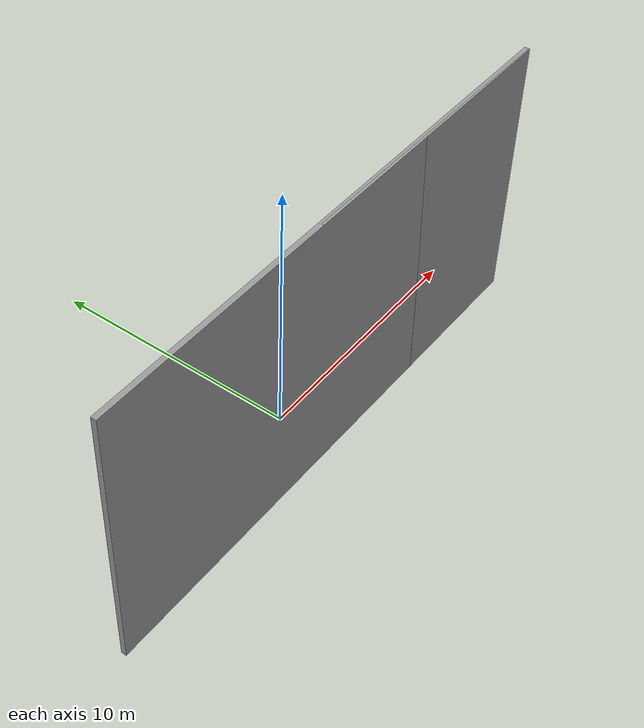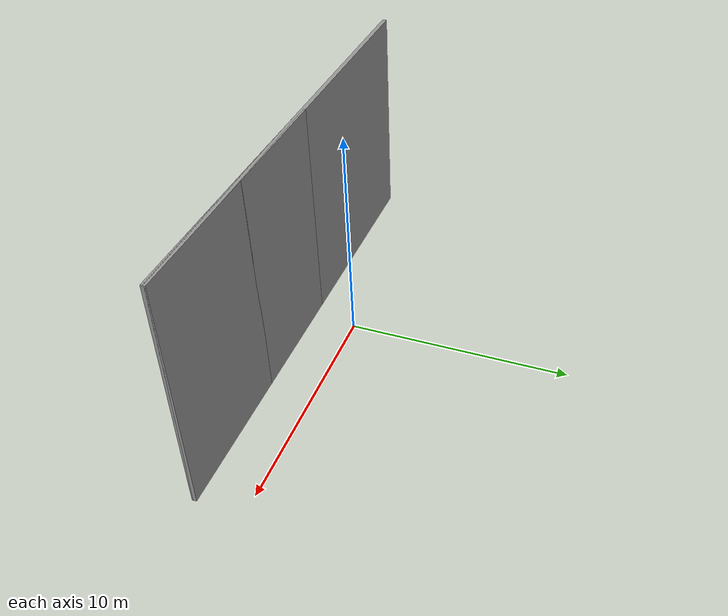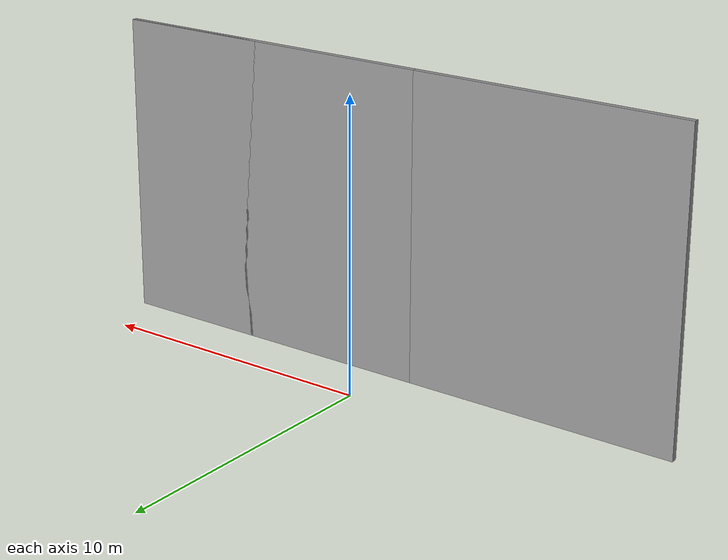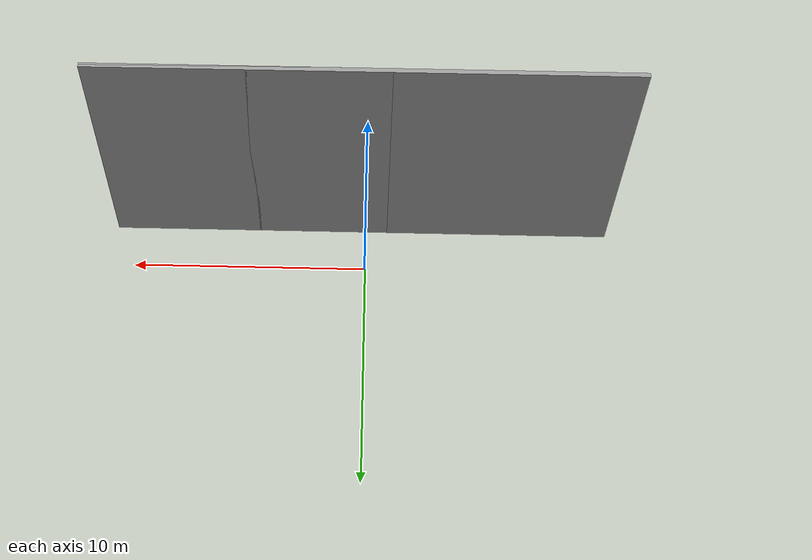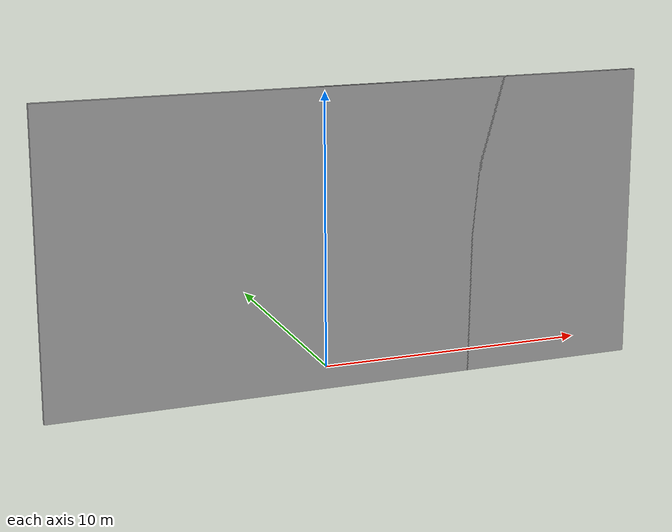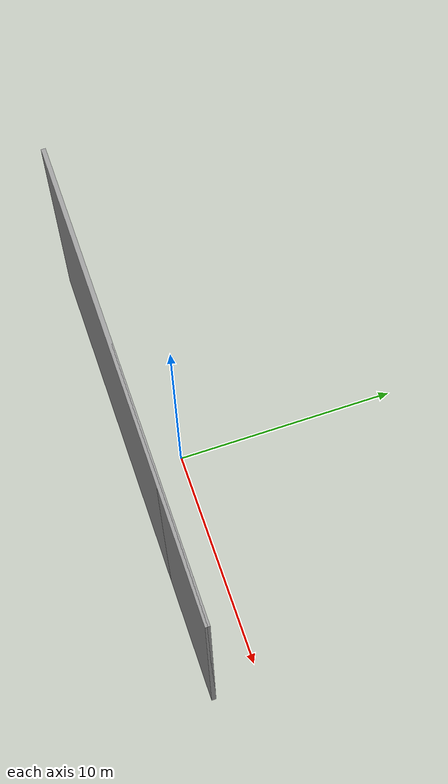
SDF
<?xml version='1.0'?>
<sdf version='1.4'>
  <model name='big_wall'>
    <link name='Wall_6'>
      <collision name='Wall_6_Collision'>
        <geometry>
          <box>
            <size>21.45 0.2 10.508</size>
          </box>
        </geometry>
        <pose>0 0 5.254 0 -0 0</pose>
      </collision>
      <visual name='Wall_6_Visual'>
        <pose>0 0 5.254 0 -0 0</pose>
        <geometry>
          <box>
            <size>21.45 0.2 10.508</size>
          </box>
        </geometry>
        <material>
          <script>
            <uri>file://media/materials/scripts/gazebo.material</uri>
            <name>Gazebo/Grey</name>
          </script>
        </material>
      </visual>
      <velocity_decay>
        <linear>0</linear>
        <angular>0</angular>
      </velocity_decay>
      <pose>0.205 -2.09 0 0 -0 0</pose>
    </link>
    <link name='Wall_7'>
      <collision name='Wall_7_Collision'>
        <geometry>
          <box>
            <size>11.85 0.2 10.508</size>
          </box>
        </geometry>
        <pose>0 0 5.254 0 -0 0</pose>
      </collision>
      <visual name='Wall_7_Visual'>
        <pose>0 0 5.254 0 -0 0</pose>
        <geometry>
          <box>
            <size>11.85 0.2 10.508</size>
          </box>
        </geometry>
        <material>
          <script>
            <uri>file://media/materials/scripts/gazebo.material</uri>
            <name>Gazebo/Grey</name>
          </script>
        </material>
      </visual>
      <velocity_decay>
        <linear>0</linear>
        <angular>0</angular>
      </velocity_decay>
      <pose>5.005 -2.09 0 0 -0 3.14159</pose>
    </link>
    <static>1</static>
  </model>
</sdf>
